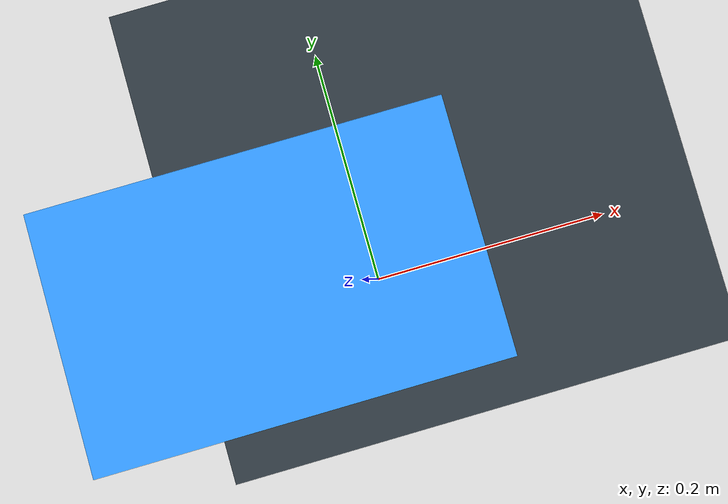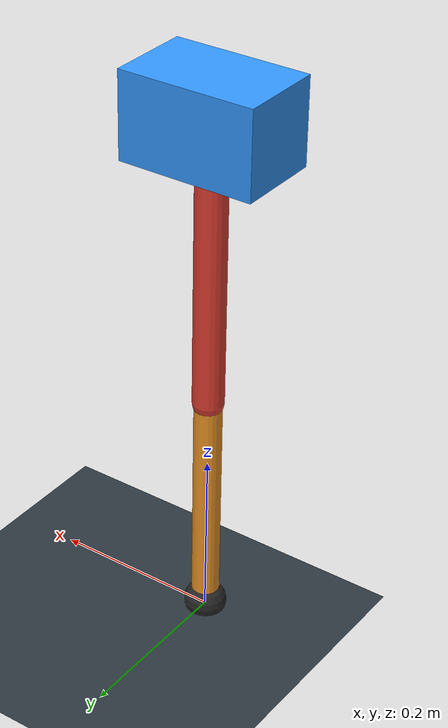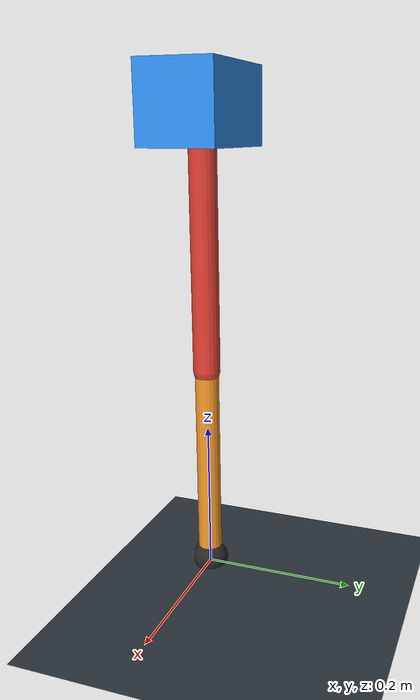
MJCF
<mujoco model="single_axis_two_bar">
  <compiler angle="radian" inertiafromgeom="true"/>
  <option timestep="0.001" integrator="implicitfast" gravity="0 0 -9.81"/>
  <default>
    <joint damping="0.08"/>
    <geom friction="1.2 0.01 0.0001" condim="3"/>
  </default>
  <worldbody>
    <geom name="floor" type="plane" size="5 5 0.1" rgba="0.18 0.22 0.25 1"/>
    <body name="carriage" pos="0 0 0.6200428786527227">
      <joint name="pole_slide" type="slide" axis="0 0 1"/>
      <geom name="payload" type="box" size="0.08 0.05 0.05" mass="2.4400066227333324" rgba="0.2 0.6 1 1"/>
      <body name="thigh" pos="0 0 0">
        <joint name="hip" type="hinge" axis="0 1 0"/>
        <geom name="thigh_link" type="capsule" fromto="0 0 0 0 0 -0.3379354000081502" size="0.018" mass="0.24078343792814122" rgba="0.9 0.25 0.2 1"/>
        <body name="shank" pos="0 0 -0.3379354000081502">
          <joint name="knee" type="hinge" axis="0 1 0"/>
          <geom name="shank_link" type="capsule" fromto="0 0 0 0 0 -0.2755108666441412" size="0.016" mass="0.1963051330388531" rgba="0.95 0.6 0.15 1"/>
          <geom name="foot" type="sphere" pos="0 0 -0.2755108666441412" size="0.025" mass="0.03" rgba="0.15 0.15 0.15 1"/>
          <site name="toe" pos="0 0 -0.2755108666441412" size="0.008"/>
        </body>
      </body>
    </body>
  </worldbody>
  <actuator>
    <motor name="hip_motor" joint="hip" ctrlrange="-34.00415631307874 34.00415631307874"/>
    <motor name="knee_motor" joint="knee" ctrlrange="-101.85649469497275 101.85649469497275"/>
  </actuator>
</mujoco>
